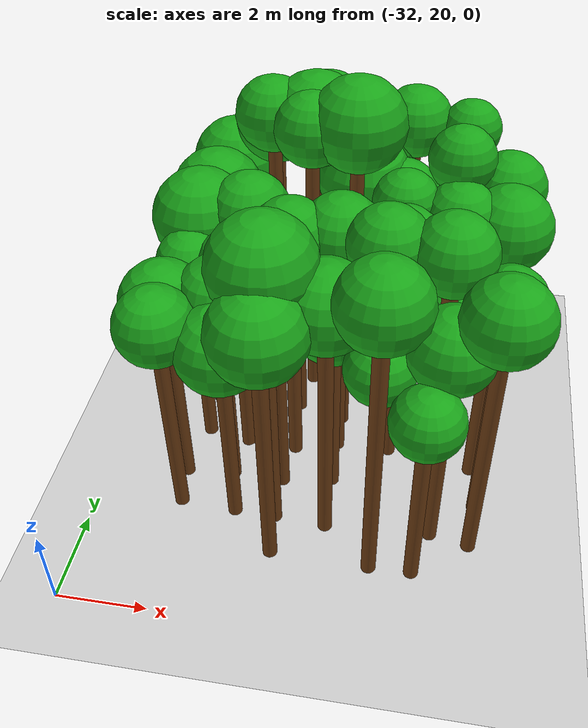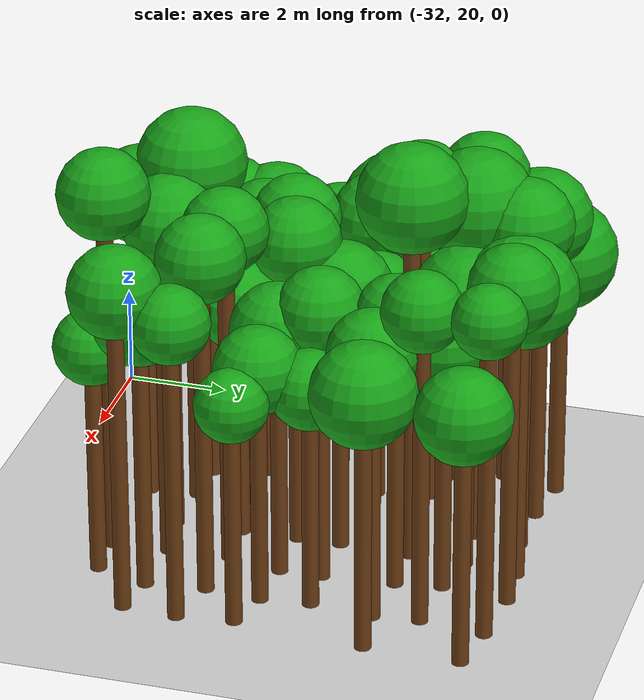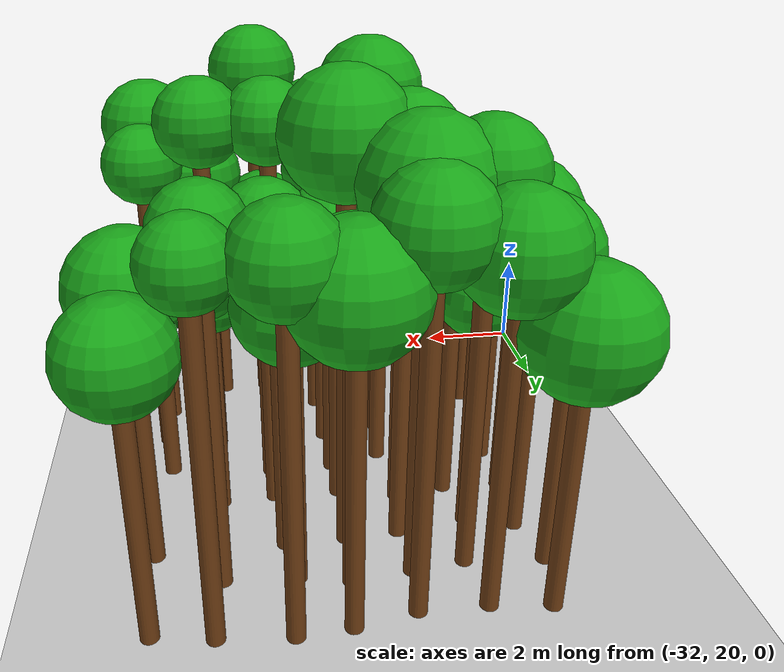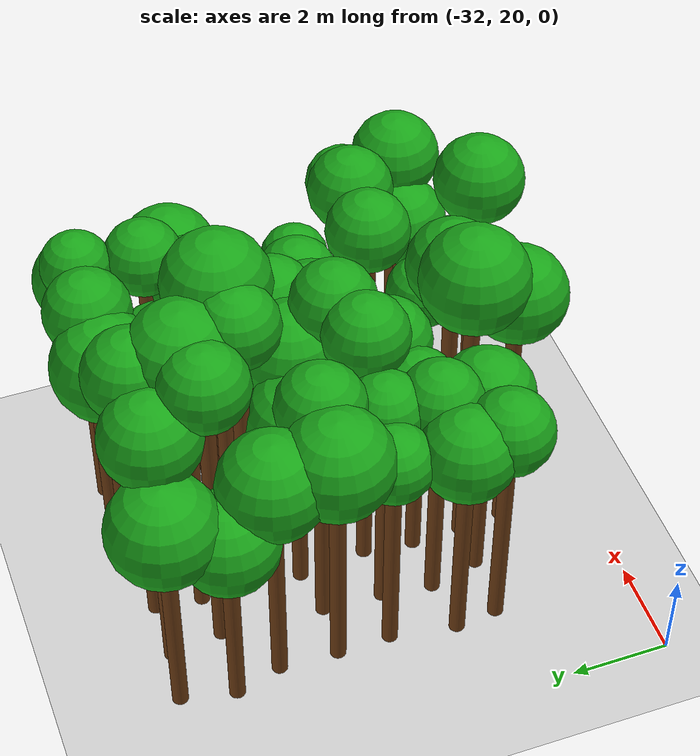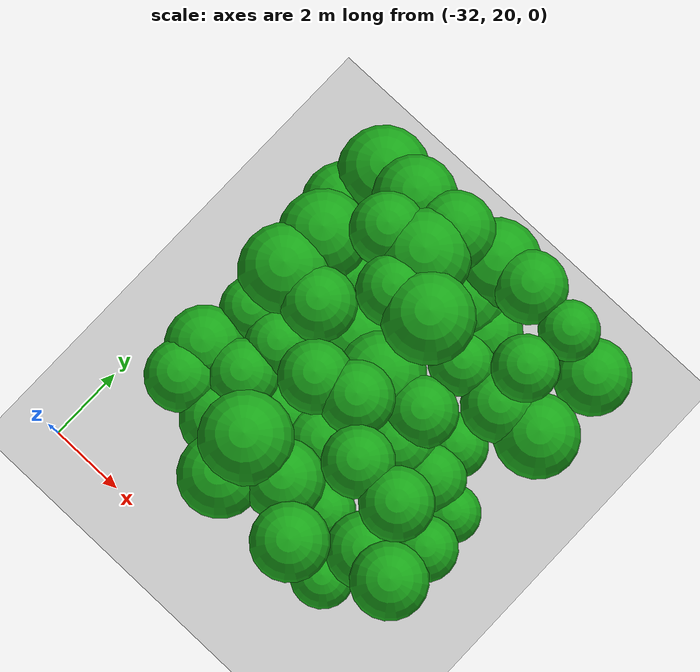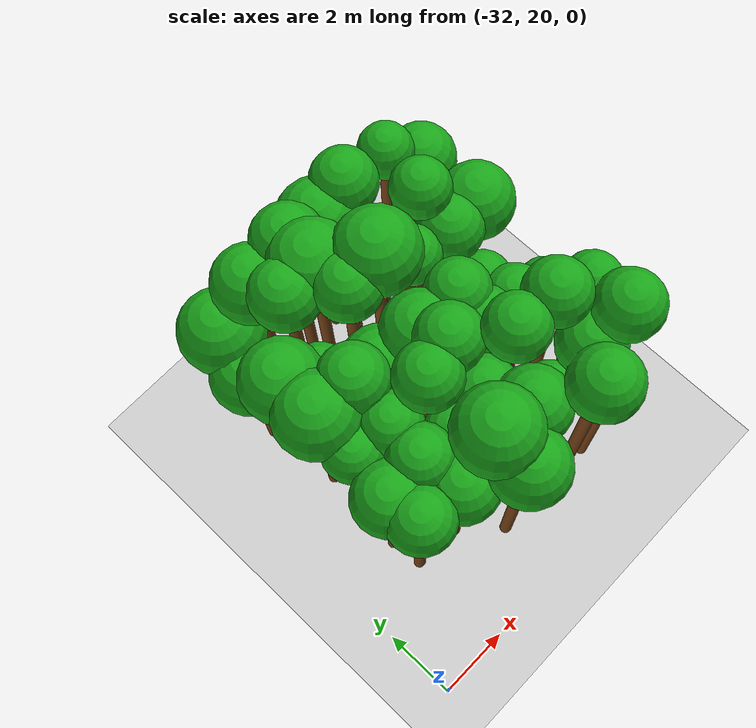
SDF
<sdf version="1.6">
 <world name="forest_world">
  <include><uri>model://sun</uri></include>
  <include><uri>model://ground_plane</uri></include>
  <model name="tree_48_trunk">
   <static>true</static>
   <pose>-30.04 22.86 2.45 0 0 0</pose>
   <link name="link">
    <collision name="collision">
     <geometry><cylinder><radius>0.16</radius><length>4.90</length></cylinder></geometry>
    </collision>
    <visual name="visual">
     <geometry><cylinder><radius>0.16</radius><length>4.90</length></cylinder></geometry>
     <material><ambient>0.35 0.20 0.05 1</ambient><diffuse>0.45 0.25 0.08 1</diffuse></material>
    </visual>
   </link>
  </model>
  <model name="tree_48_leaf">
   <static>true</static>
   <pose>-30.04 22.86 5.41 0 0 0</pose>
   <link name="link">
    <collision name="collision"><geometry><sphere><radius>0.85</radius></sphere></geometry></collision>
    <visual name="visual">
     <geometry><sphere><radius>0.85</radius></sphere></geometry>
     <material><ambient>0.05 0.45 0.05 1</ambient><diffuse>0.10 0.65 0.10 1</diffuse></material>
    </visual>
   </link>
  </model>
  <model name="tree_49_trunk">
   <static>true</static>
   <pose>-30.14 23.73 2.34 0 0 0</pose>
   <link name="link">
    <collision name="collision">
     <geometry><cylinder><radius>0.16</radius><length>4.68</length></cylinder></geometry>
    </collision>
    <visual name="visual">
     <geometry><cylinder><radius>0.16</radius><length>4.68</length></cylinder></geometry>
     <material><ambient>0.35 0.20 0.05 1</ambient><diffuse>0.45 0.25 0.08 1</diffuse></material>
    </visual>
   </link>
  </model>
  <model name="tree_49_leaf">
   <static>true</static>
   <pose>-30.14 23.73 5.25 0 0 0</pose>
   <link name="link">
    <collision name="collision"><geometry><sphere><radius>0.94</radius></sphere></geometry></collision>
    <visual name="visual">
     <geometry><sphere><radius>0.94</radius></sphere></geometry>
     <material><ambient>0.05 0.45 0.05 1</ambient><diffuse>0.10 0.65 0.10 1</diffuse></material>
    </visual>
   </link>
  </model>
  <model name="tree_50_trunk">
   <static>true</static>
   <pose>-29.92 25.08 2.40 0 0 0</pose>
   <link name="link">
    <collision name="collision">
     <geometry><cylinder><radius>0.16</radius><length>4.81</length></cylinder></geometry>
    </collision>
    <visual name="visual">
     <geometry><cylinder><radius>0.16</radius><length>4.81</length></cylinder></geometry>
     <material><ambient>0.35 0.20 0.05 1</ambient><diffuse>0.45 0.25 0.08 1</diffuse></material>
    </visual>
   </link>
  </model>
  <model name="tree_50_leaf">
   <static>true</static>
   <pose>-29.92 25.08 5.27 0 0 0</pose>
   <link name="link">
    <collision name="collision"><geometry><sphere><radius>0.78</radius></sphere></geometry></collision>
    <visual name="visual">
     <geometry><sphere><radius>0.78</radius></sphere></geometry>
     <material><ambient>0.05 0.45 0.05 1</ambient><diffuse>0.10 0.65 0.10 1</diffuse></material>
    </visual>
   </link>
  </model>
  <model name="tree_51_trunk">
   <static>true</static>
   <pose>-29.95 26.18 2.54 0 0 0</pose>
   <link name="link">
    <collision name="collision">
     <geometry><cylinder><radius>0.16</radius><length>5.07</length></cylinder></geometry>
    </collision>
    <visual name="visual">
     <geometry><cylinder><radius>0.16</radius><length>5.07</length></cylinder></geometry>
     <material><ambient>0.35 0.20 0.05 1</ambient><diffuse>0.45 0.25 0.08 1</diffuse></material>
    </visual>
   </link>
  </model>
  <model name="tree_51_leaf">
   <static>true</static>
   <pose>-29.95 26.18 5.72 0 0 0</pose>
   <link name="link">
    <collision name="collision"><geometry><sphere><radius>1.09</radius></sphere></geometry></collision>
    <visual name="visual">
     <geometry><sphere><radius>1.09</radius></sphere></geometry>
     <material><ambient>0.05 0.45 0.05 1</ambient><diffuse>0.10 0.65 0.10 1</diffuse></material>
    </visual>
   </link>
  </model>
  <model name="tree_52_trunk">
   <static>true</static>
   <pose>-29.90 27.38 2.45 0 0 0</pose>
   <link name="link">
    <collision name="collision">
     <geometry><cylinder><radius>0.16</radius><length>4.90</length></cylinder></geometry>
    </collision>
    <visual name="visual">
     <geometry><cylinder><radius>0.16</radius><length>4.90</length></cylinder></geometry>
     <material><ambient>0.35 0.20 0.05 1</ambient><diffuse>0.45 0.25 0.08 1</diffuse></material>
    </visual>
   </link>
  </model>
  <model name="tree_52_leaf">
   <static>true</static>
   <pose>-29.90 27.38 5.54 0 0 0</pose>
   <link name="link">
    <collision name="collision"><geometry><sphere><radius>1.06</radius></sphere></geometry></collision>
    <visual name="visual">
     <geometry><sphere><radius>1.06</radius></sphere></geometry>
     <material><ambient>0.05 0.45 0.05 1</ambient><diffuse>0.10 0.65 0.10 1</diffuse></material>
    </visual>
   </link>
  </model>
  <model name="tree_53_trunk">
   <static>true</static>
   <pose>-30.17 28.34 2.02 0 0 0</pose>
   <link name="link">
    <collision name="collision">
     <geometry><cylinder><radius>0.16</radius><length>4.05</length></cylinder></geometry>
    </collision>
    <visual name="visual">
     <geometry><cylinder><radius>0.16</radius><length>4.05</length></cylinder></geometry>
     <material><ambient>0.35 0.20 0.05 1</ambient><diffuse>0.45 0.25 0.08 1</diffuse></material>
    </visual>
   </link>
  </model>
  <model name="tree_53_leaf">
   <static>true</static>
   <pose>-30.17 28.34 4.65 0 0 0</pose>
   <link name="link">
    <collision name="collision"><geometry><sphere><radius>1.00</radius></sphere></geometry></collision>
    <visual name="visual">
     <geometry><sphere><radius>1.00</radius></sphere></geometry>
     <material><ambient>0.05 0.45 0.05 1</ambient><diffuse>0.10 0.65 0.10 1</diffuse></material>
    </visual>
   </link>
  </model>
  <model name="tree_54_trunk">
   <static>true</static>
   <pose>-29.94 29.43 2.27 0 0 0</pose>
   <link name="link">
    <collision name="collision">
     <geometry><cylinder><radius>0.16</radius><length>4.54</length></cylinder></geometry>
    </collision>
    <visual name="visual">
     <geometry><cylinder><radius>0.16</radius><length>4.54</length></cylinder></geometry>
     <material><ambient>0.35 0.20 0.05 1</ambient><diffuse>0.45 0.25 0.08 1</diffuse></material>
    </visual>
   </link>
  </model>
  <model name="tree_54_leaf">
   <static>true</static>
   <pose>-29.94 29.43 5.19 0 0 0</pose>
   <link name="link">
    <collision name="collision"><geometry><sphere><radius>1.09</radius></sphere></geometry></collision>
    <visual name="visual">
     <geometry><sphere><radius>1.09</radius></sphere></geometry>
     <material><ambient>0.05 0.45 0.05 1</ambient><diffuse>0.10 0.65 0.10 1</diffuse></material>
    </visual>
   </link>
  </model>
  <model name="tree_103_trunk">
   <static>true</static>
   <pose>-28.76 22.78 2.25 0 0 0</pose>
   <link name="link">
    <collision name="collision">
     <geometry><cylinder><radius>0.16</radius><length>4.50</length></cylinder></geometry>
    </collision>
    <visual name="visual">
     <geometry><cylinder><radius>0.16</radius><length>4.50</length></cylinder></geometry>
     <material><ambient>0.35 0.20 0.05 1</ambient><diffuse>0.45 0.25 0.08 1</diffuse></material>
    </visual>
   </link>
  </model>
  <model name="tree_103_leaf">
   <static>true</static>
   <pose>-28.76 22.78 5.07 0 0 0</pose>
   <link name="link">
    <collision name="collision"><geometry><sphere><radius>0.95</radius></sphere></geometry></collision>
    <visual name="visual">
     <geometry><sphere><radius>0.95</radius></sphere></geometry>
     <material><ambient>0.05 0.45 0.05 1</ambient><diffuse>0.10 0.65 0.10 1</diffuse></material>
    </visual>
   </link>
  </model>
  <model name="tree_104_trunk">
   <static>true</static>
   <pose>-29.03 23.83 2.53 0 0 0</pose>
   <link name="link">
    <collision name="collision">
     <geometry><cylinder><radius>0.16</radius><length>5.05</length></cylinder></geometry>
    </collision>
    <visual name="visual">
     <geometry><cylinder><radius>0.16</radius><length>5.05</length></cylinder></geometry>
     <material><ambient>0.35 0.20 0.05 1</ambient><diffuse>0.45 0.25 0.08 1</diffuse></material>
    </visual>
   </link>
  </model>
  <model name="tree_104_leaf">
   <static>true</static>
   <pose>-29.03 23.83 5.55 0 0 0</pose>
   <link name="link">
    <collision name="collision"><geometry><sphere><radius>0.83</radius></sphere></geometry></collision>
    <visual name="visual">
     <geometry><sphere><radius>0.83</radius></sphere></geometry>
     <material><ambient>0.05 0.45 0.05 1</ambient><diffuse>0.10 0.65 0.10 1</diffuse></material>
    </visual>
   </link>
  </model>
  <model name="tree_105_trunk">
   <static>true</static>
   <pose>-28.91 24.87 2.54 0 0 0</pose>
   <link name="link">
    <collision name="collision">
     <geometry><cylinder><radius>0.16</radius><length>5.07</length></cylinder></geometry>
    </collision>
    <visual name="visual">
     <geometry><cylinder><radius>0.16</radius><length>5.07</length></cylinder></geometry>
     <material><ambient>0.35 0.20 0.05 1</ambient><diffuse>0.45 0.25 0.08 1</diffuse></material>
    </visual>
   </link>
  </model>
  <model name="tree_105_leaf">
   <static>true</static>
   <pose>-28.91 24.87 5.55 0 0 0</pose>
   <link name="link">
    <collision name="collision"><geometry><sphere><radius>0.79</radius></sphere></geometry></collision>
    <visual name="visual">
     <geometry><sphere><radius>0.79</radius></sphere></geometry>
     <material><ambient>0.05 0.45 0.05 1</ambient><diffuse>0.10 0.65 0.10 1</diffuse></material>
    </visual>
   </link>
  </model>
  <model name="tree_106_trunk">
   <static>true</static>
   <pose>-28.84 26.10 2.75 0 0 0</pose>
   <link name="link">
    <collision name="collision">
     <geometry><cylinder><radius>0.16</radius><length>5.51</length></cylinder></geometry>
    </collision>
    <visual name="visual">
     <geometry><cylinder><radius>0.16</radius><length>5.51</length></cylinder></geometry>
     <material><ambient>0.35 0.20 0.05 1</ambient><diffuse>0.45 0.25 0.08 1</diffuse></material>
    </visual>
   </link>
  </model>
  <model name="tree_106_leaf">
   <static>true</static>
   <pose>-28.84 26.10 6.03 0 0 0</pose>
   <link name="link">
    <collision name="collision"><geometry><sphere><radius>0.88</radius></sphere></geometry></collision>
    <visual name="visual">
     <geometry><sphere><radius>0.88</radius></sphere></geometry>
     <material><ambient>0.05 0.45 0.05 1</ambient><diffuse>0.10 0.65 0.10 1</diffuse></material>
    </visual>
   </link>
  </model>
  <model name="tree_107_trunk">
   <static>true</static>
   <pose>-29.02 27.11 2.15 0 0 0</pose>
   <link name="link">
    <collision name="collision">
     <geometry><cylinder><radius>0.16</radius><length>4.31</length></cylinder></geometry>
    </collision>
    <visual name="visual">
     <geometry><cylinder><radius>0.16</radius><length>4.31</length></cylinder></geometry>
     <material><ambient>0.35 0.20 0.05 1</ambient><diffuse>0.45 0.25 0.08 1</diffuse></material>
    </visual>
   </link>
  </model>
  <model name="tree_107_leaf">
   <static>true</static>
   <pose>-29.02 27.11 4.77 0 0 0</pose>
   <link name="link">
    <collision name="collision"><geometry><sphere><radius>0.78</radius></sphere></geometry></collision>
    <visual name="visual">
     <geometry><sphere><radius>0.78</radius></sphere></geometry>
     <material><ambient>0.05 0.45 0.05 1</ambient><diffuse>0.10 0.65 0.10 1</diffuse></material>
    </visual>
   </link>
  </model>
  <model name="tree_108_trunk">
   <static>true</static>
   <pose>-28.73 28.21 3.36 0 0 0</pose>
   <link name="link">
    <collision name="collision">
     <geometry><cylinder><radius>0.16</radius><length>6.71</length></cylinder></geometry>
    </collision>
    <visual name="visual">
     <geometry><cylinder><radius>0.16</radius><length>6.71</length></cylinder></geometry>
     <material><ambient>0.35 0.20 0.05 1</ambient><diffuse>0.45 0.25 0.08 1</diffuse></material>
    </visual>
   </link>
  </model>
  <model name="tree_108_leaf">
   <static>true</static>
   <pose>-28.73 28.21 7.22 0 0 0</pose>
   <link name="link">
    <collision name="collision"><geometry><sphere><radius>0.86</radius></sphere></geometry></collision>
    <visual name="visual">
     <geometry><sphere><radius>0.86</radius></sphere></geometry>
     <material><ambient>0.05 0.45 0.05 1</ambient><diffuse>0.10 0.65 0.10 1</diffuse></material>
    </visual>
   </link>
  </model>
  <model name="tree_109_trunk">
   <static>true</static>
   <pose>-28.88 29.28 2.92 0 0 0</pose>
   <link name="link">
    <collision name="collision">
     <geometry><cylinder><radius>0.16</radius><length>5.85</length></cylinder></geometry>
    </collision>
    <visual name="visual">
     <geometry><cylinder><radius>0.16</radius><length>5.85</length></cylinder></geometry>
     <material><ambient>0.35 0.20 0.05 1</ambient><diffuse>0.45 0.25 0.08 1</diffuse></material>
    </visual>
   </link>
  </model>
  <model name="tree_109_leaf">
   <static>true</static>
   <pose>-28.88 29.28 6.43 0 0 0</pose>
   <link name="link">
    <collision name="collision"><geometry><sphere><radius>0.97</radius></sphere></geometry></collision>
    <visual name="visual">
     <geometry><sphere><radius>0.97</radius></sphere></geometry>
     <material><ambient>0.05 0.45 0.05 1</ambient><diffuse>0.10 0.65 0.10 1</diffuse></material>
    </visual>
   </link>
  </model>
  <model name="tree_157_trunk">
   <static>true</static>
   <pose>-27.75 21.81 2.94 0 0 0</pose>
   <link name="link">
    <collision name="collision">
     <geometry><cylinder><radius>0.16</radius><length>5.88</length></cylinder></geometry>
    </collision>
    <visual name="visual">
     <geometry><cylinder><radius>0.16</radius><length>5.88</length></cylinder></geometry>
     <material><ambient>0.35 0.20 0.05 1</ambient><diffuse>0.45 0.25 0.08 1</diffuse></material>
    </visual>
   </link>
  </model>
  <model name="tree_157_leaf">
   <static>true</static>
   <pose>-27.75 21.81 6.46 0 0 0</pose>
   <link name="link">
    <collision name="collision"><geometry><sphere><radius>0.97</radius></sphere></geometry></collision>
    <visual name="visual">
     <geometry><sphere><radius>0.97</radius></sphere></geometry>
     <material><ambient>0.05 0.45 0.05 1</ambient><diffuse>0.10 0.65 0.10 1</diffuse></material>
    </visual>
   </link>
  </model>
  <model name="tree_158_trunk">
   <static>true</static>
   <pose>-27.83 22.75 3.29 0 0 0</pose>
   <link name="link">
    <collision name="collision">
     <geometry><cylinder><radius>0.16</radius><length>6.58</length></cylinder></geometry>
    </collision>
    <visual name="visual">
     <geometry><cylinder><radius>0.16</radius><length>6.58</length></cylinder></geometry>
     <material><ambient>0.35 0.20 0.05 1</ambient><diffuse>0.45 0.25 0.08 1</diffuse></material>
    </visual>
   </link>
  </model>
  <model name="tree_158_leaf">
   <static>true</static>
   <pose>-27.83 22.75 7.22 0 0 0</pose>
   <link name="link">
    <collision name="collision"><geometry><sphere><radius>1.06</radius></sphere></geometry></collision>
    <visual name="visual">
     <geometry><sphere><radius>1.06</radius></sphere></geometry>
     <material><ambient>0.05 0.45 0.05 1</ambient><diffuse>0.10 0.65 0.10 1</diffuse></material>
    </visual>
   </link>
  </model>
  <model name="tree_159_trunk">
   <static>true</static>
   <pose>-27.85 23.80 2.13 0 0 0</pose>
   <link name="link">
    <collision name="collision">
     <geometry><cylinder><radius>0.16</radius><length>4.26</length></cylinder></geometry>
    </collision>
    <visual name="visual">
     <geometry><cylinder><radius>0.16</radius><length>4.26</length></cylinder></geometry>
     <material><ambient>0.35 0.20 0.05 1</ambient><diffuse>0.45 0.25 0.08 1</diffuse></material>
    </visual>
   </link>
  </model>
  <model name="tree_159_leaf">
   <static>true</static>
   <pose>-27.85 23.80 4.73 0 0 0</pose>
   <link name="link">
    <collision name="collision"><geometry><sphere><radius>0.79</radius></sphere></geometry></collision>
    <visual name="visual">
     <geometry><sphere><radius>0.79</radius></sphere></geometry>
     <material><ambient>0.05 0.45 0.05 1</ambient><diffuse>0.10 0.65 0.10 1</diffuse></material>
    </visual>
   </link>
  </model>
  <model name="tree_160_trunk">
   <static>true</static>
   <pose>-27.73 24.83 2.93 0 0 0</pose>
   <link name="link">
    <collision name="collision">
     <geometry><cylinder><radius>0.16</radius><length>5.87</length></cylinder></geometry>
    </collision>
    <visual name="visual">
     <geometry><cylinder><radius>0.16</radius><length>5.87</length></cylinder></geometry>
     <material><ambient>0.35 0.20 0.05 1</ambient><diffuse>0.45 0.25 0.08 1</diffuse></material>
    </visual>
   </link>
  </model>
  <model name="tree_160_leaf">
   <static>true</static>
   <pose>-27.73 24.83 6.38 0 0 0</pose>
   <link name="link">
    <collision name="collision"><geometry><sphere><radius>0.85</radius></sphere></geometry></collision>
    <visual name="visual">
     <geometry><sphere><radius>0.85</radius></sphere></geometry>
     <material><ambient>0.05 0.45 0.05 1</ambient><diffuse>0.10 0.65 0.10 1</diffuse></material>
    </visual>
   </link>
  </model>
  <model name="tree_161_trunk">
   <static>true</static>
   <pose>-27.87 26.25 2.09 0 0 0</pose>
   <link name="link">
    <collision name="collision">
     <geometry><cylinder><radius>0.16</radius><length>4.17</length></cylinder></geometry>
    </collision>
    <visual name="visual">
     <geometry><cylinder><radius>0.16</radius><length>4.17</length></cylinder></geometry>
     <material><ambient>0.35 0.20 0.05 1</ambient><diffuse>0.45 0.25 0.08 1</diffuse></material>
    </visual>
   </link>
  </model>
  <model name="tree_161_leaf">
   <static>true</static>
   <pose>-27.87 26.25 4.77 0 0 0</pose>
   <link name="link">
    <collision name="collision"><geometry><sphere><radius>1.00</radius></sphere></geometry></collision>
    <visual name="visual">
     <geometry><sphere><radius>1.00</radius></sphere></geometry>
     <material><ambient>0.05 0.45 0.05 1</ambient><diffuse>0.10 0.65 0.10 1</diffuse></material>
    </visual>
   </link>
  </model>
  <model name="tree_162_trunk">
   <static>true</static>
   <pose>-27.70 27.28 3.47 0 0 0</pose>
   <link name="link">
    <collision name="collision">
     <geometry><cylinder><radius>0.16</radius><length>6.94</length></cylinder></geometry>
    </collision>
    <visual name="visual">
     <geometry><cylinder><radius>0.16</radius><length>6.94</length></cylinder></geometry>
     <material><ambient>0.35 0.20 0.05 1</ambient><diffuse>0.45 0.25 0.08 1</diffuse></material>
    </visual>
   </link>
  </model>
  <model name="tree_162_leaf">
   <static>true</static>
   <pose>-27.70 27.28 7.43 0 0 0</pose>
   <link name="link">
    <collision name="collision"><geometry><sphere><radius>0.83</radius></sphere></geometry></collision>
    <visual name="visual">
     <geometry><sphere><radius>0.83</radius></sphere></geometry>
     <material><ambient>0.05 0.45 0.05 1</ambient><diffuse>0.10 0.65 0.10 1</diffuse></material>
    </visual>
   </link>
  </model>
  <model name="tree_163_trunk">
   <static>true</static>
   <pose>-27.77 28.32 3.24 0 0 0</pose>
   <link name="link">
    <collision name="collision">
     <geometry><cylinder><radius>0.16</radius><length>6.48</length></cylinder></geometry>
    </collision>
    <visual name="visual">
     <geometry><cylinder><radius>0.16</radius><length>6.48</length></cylinder></geometry>
     <material><ambient>0.35 0.20 0.05 1</ambient><diffuse>0.45 0.25 0.08 1</diffuse></material>
    </visual>
   </link>
  </model>
  <model name="tree_163_leaf">
   <static>true</static>
   <pose>-27.77 28.32 7.12 0 0 0</pose>
   <link name="link">
    <collision name="collision"><geometry><sphere><radius>1.08</radius></sphere></geometry></collision>
    <visual name="visual">
     <geometry><sphere><radius>1.08</radius></sphere></geometry>
     <material><ambient>0.05 0.45 0.05 1</ambient><diffuse>0.10 0.65 0.10 1</diffuse></material>
    </visual>
   </link>
  </model>
  <model name="tree_164_trunk">
   <static>true</static>
   <pose>-27.67 29.26 3.15 0 0 0</pose>
   <link name="link">
    <collision name="collision">
     <geometry><cylinder><radius>0.16</radius><length>6.30</length></cylinder></geometry>
    </collision>
    <visual name="visual">
     <geometry><cylinder><radius>0.16</radius><length>6.30</length></cylinder></geometry>
     <material><ambient>0.35 0.20 0.05 1</ambient><diffuse>0.45 0.25 0.08 1</diffuse></material>
    </visual>
   </link>
  </model>
  <model name="tree_164_leaf">
   <static>true</static>
   <pose>-27.67 29.26 6.85 0 0 0</pose>
   <link name="link">
    <collision name="collision"><geometry><sphere><radius>0.92</radius></sphere></geometry></collision>
    <visual name="visual">
     <geometry><sphere><radius>0.92</radius></sphere></geometry>
     <material><ambient>0.05 0.45 0.05 1</ambient><diffuse>0.10 0.65 0.10 1</diffuse></material>
    </visual>
   </link>
  </model>
  <model name="tree_213_trunk">
   <static>true</static>
   <pose>-26.67 22.68 2.98 0 0 0</pose>
   <link name="link">
    <collision name="collision">
     <geometry><cylinder><radius>0.16</radius><length>5.96</length></cylinder></geometry>
    </collision>
    <visual name="visual">
     <geometry><cylinder><radius>0.16</radius><length>5.96</length></cylinder></geometry>
     <material><ambient>0.35 0.20 0.05 1</ambient><diffuse>0.45 0.25 0.08 1</diffuse></material>
    </visual>
   </link>
  </model>
  <model name="tree_213_leaf">
   <static>true</static>
   <pose>-26.67 22.68 6.52 0 0 0</pose>
   <link name="link">
    <collision name="collision"><geometry><sphere><radius>0.93</radius></sphere></geometry></collision>
    <visual name="visual">
     <geometry><sphere><radius>0.93</radius></sphere></geometry>
     <material><ambient>0.05 0.45 0.05 1</ambient><diffuse>0.10 0.65 0.10 1</diffuse></material>
    </visual>
   </link>
  </model>
  <model name="tree_214_trunk">
   <static>true</static>
   <pose>-26.71 24.00 2.22 0 0 0</pose>
   <link name="link">
    <collision name="collision">
     <geometry><cylinder><radius>0.16</radius><length>4.44</length></cylinder></geometry>
    </collision>
    <visual name="visual">
     <geometry><cylinder><radius>0.16</radius><length>4.44</length></cylinder></geometry>
     <material><ambient>0.35 0.20 0.05 1</ambient><diffuse>0.45 0.25 0.08 1</diffuse></material>
    </visual>
   </link>
  </model>
  <model name="tree_214_leaf">
   <static>true</static>
   <pose>-26.71 24.00 4.97 0 0 0</pose>
   <link name="link">
    <collision name="collision"><geometry><sphere><radius>0.89</radius></sphere></geometry></collision>
    <visual name="visual">
     <geometry><sphere><radius>0.89</radius></sphere></geometry>
     <material><ambient>0.05 0.45 0.05 1</ambient><diffuse>0.10 0.65 0.10 1</diffuse></material>
    </visual>
   </link>
  </model>
  <model name="tree_215_trunk">
   <static>true</static>
   <pose>-26.74 25.11 2.94 0 0 0</pose>
   <link name="link">
    <collision name="collision">
     <geometry><cylinder><radius>0.16</radius><length>5.88</length></cylinder></geometry>
    </collision>
    <visual name="visual">
     <geometry><cylinder><radius>0.16</radius><length>5.88</length></cylinder></geometry>
     <material><ambient>0.35 0.20 0.05 1</ambient><diffuse>0.45 0.25 0.08 1</diffuse></material>
    </visual>
   </link>
  </model>
  <model name="tree_215_leaf">
   <static>true</static>
   <pose>-26.74 25.11 6.40 0 0 0</pose>
   <link name="link">
    <collision name="collision"><geometry><sphere><radius>0.86</radius></sphere></geometry></collision>
    <visual name="visual">
     <geometry><sphere><radius>0.86</radius></sphere></geometry>
     <material><ambient>0.05 0.45 0.05 1</ambient><diffuse>0.10 0.65 0.10 1</diffuse></material>
    </visual>
   </link>
  </model>
  <model name="tree_216_trunk">
   <static>true</static>
   <pose>-26.76 25.96 2.40 0 0 0</pose>
   <link name="link">
    <collision name="collision">
     <geometry><cylinder><radius>0.16</radius><length>4.80</length></cylinder></geometry>
    </collision>
    <visual name="visual">
     <geometry><cylinder><radius>0.16</radius><length>4.80</length></cylinder></geometry>
     <material><ambient>0.35 0.20 0.05 1</ambient><diffuse>0.45 0.25 0.08 1</diffuse></material>
    </visual>
   </link>
  </model>
  <model name="tree_216_leaf">
   <static>true</static>
   <pose>-26.76 25.96 5.42 0 0 0</pose>
   <link name="link">
    <collision name="collision"><geometry><sphere><radius>1.03</radius></sphere></geometry></collision>
    <visual name="visual">
     <geometry><sphere><radius>1.03</radius></sphere></geometry>
     <material><ambient>0.05 0.45 0.05 1</ambient><diffuse>0.10 0.65 0.10 1</diffuse></material>
    </visual>
   </link>
  </model>
  <model name="tree_217_trunk">
   <static>true</static>
   <pose>-26.72 27.34 3.49 0 0 0</pose>
   <link name="link">
    <collision name="collision">
     <geometry><cylinder><radius>0.16</radius><length>6.97</length></cylinder></geometry>
    </collision>
    <visual name="visual">
     <geometry><cylinder><radius>0.16</radius><length>6.97</length></cylinder></geometry>
     <material><ambient>0.35 0.20 0.05 1</ambient><diffuse>0.45 0.25 0.08 1</diffuse></material>
    </visual>
   </link>
  </model>
  <model name="tree_217_leaf">
   <static>true</static>
   <pose>-26.72 27.34 7.61 0 0 0</pose>
   <link name="link">
    <collision name="collision"><geometry><sphere><radius>1.05</radius></sphere></geometry></collision>
    <visual name="visual">
     <geometry><sphere><radius>1.05</radius></sphere></geometry>
     <material><ambient>0.05 0.45 0.05 1</ambient><diffuse>0.10 0.65 0.10 1</diffuse></material>
    </visual>
   </link>
  </model>
  <model name="tree_218_trunk">
   <static>true</static>
   <pose>-26.68 28.43 2.50 0 0 0</pose>
   <link name="link">
    <collision name="collision">
     <geometry><cylinder><radius>0.16</radius><length>5.00</length></cylinder></geometry>
    </collision>
    <visual name="visual">
     <geometry><cylinder><radius>0.16</radius><length>5.00</length></cylinder></geometry>
     <material><ambient>0.35 0.20 0.05 1</ambient><diffuse>0.45 0.25 0.08 1</diffuse></material>
    </visual>
   </link>
  </model>
  <model name="tree_218_leaf">
   <static>true</static>
   <pose>-26.68 28.43 5.66 0 0 0</pose>
   <link name="link">
    <collision name="collision"><geometry><sphere><radius>1.09</radius></sphere></geometry></collision>
    <visual name="visual">
     <geometry><sphere><radius>1.09</radius></sphere></geometry>
     <material><ambient>0.05 0.45 0.05 1</ambient><diffuse>0.10 0.65 0.10 1</diffuse></material>
    </visual>
   </link>
  </model>
  <model name="tree_219_trunk">
   <static>true</static>
   <pose>-26.57 29.47 2.71 0 0 0</pose>
   <link name="link">
    <collision name="collision">
     <geometry><cylinder><radius>0.16</radius><length>5.41</length></cylinder></geometry>
    </collision>
    <visual name="visual">
     <geometry><cylinder><radius>0.16</radius><length>5.41</length></cylinder></geometry>
     <material><ambient>0.35 0.20 0.05 1</ambient><diffuse>0.45 0.25 0.08 1</diffuse></material>
    </visual>
   </link>
  </model>
  <model name="tree_219_leaf">
   <static>true</static>
   <pose>-26.57 29.47 6.05 0 0 0</pose>
   <link name="link">
    <collision name="collision"><geometry><sphere><radius>1.07</radius></sphere></geometry></collision>
    <visual name="visual">
     <geometry><sphere><radius>1.07</radius></sphere></geometry>
     <material><ambient>0.05 0.45 0.05 1</ambient><diffuse>0.10 0.65 0.10 1</diffuse></material>
    </visual>
   </link>
  </model>
  <model name="tree_267_trunk">
   <static>true</static>
   <pose>-25.57 21.76 3.48 0 0 0</pose>
   <link name="link">
    <collision name="collision">
     <geometry><cylinder><radius>0.16</radius><length>6.95</length></cylinder></geometry>
    </collision>
    <visual name="visual">
     <geometry><cylinder><radius>0.16</radius><length>6.95</length></cylinder></geometry>
     <material><ambient>0.35 0.20 0.05 1</ambient><diffuse>0.45 0.25 0.08 1</diffuse></material>
    </visual>
   </link>
  </model>
  <model name="tree_267_leaf">
   <static>true</static>
   <pose>-25.57 21.76 7.48 0 0 0</pose>
   <link name="link">
    <collision name="collision"><geometry><sphere><radius>0.88</radius></sphere></geometry></collision>
    <visual name="visual">
     <geometry><sphere><radius>0.88</radius></sphere></geometry>
     <material><ambient>0.05 0.45 0.05 1</ambient><diffuse>0.10 0.65 0.10 1</diffuse></material>
    </visual>
   </link>
  </model>
  <model name="tree_268_trunk">
   <static>true</static>
   <pose>-25.64 22.86 2.24 0 0 0</pose>
   <link name="link">
    <collision name="collision">
     <geometry><cylinder><radius>0.16</radius><length>4.49</length></cylinder></geometry>
    </collision>
    <visual name="visual">
     <geometry><cylinder><radius>0.16</radius><length>4.49</length></cylinder></geometry>
     <material><ambient>0.35 0.20 0.05 1</ambient><diffuse>0.45 0.25 0.08 1</diffuse></material>
    </visual>
   </link>
  </model>
  <model name="tree_268_leaf">
   <static>true</static>
   <pose>-25.64 22.86 4.93 0 0 0</pose>
   <link name="link">
    <collision name="collision"><geometry><sphere><radius>0.74</radius></sphere></geometry></collision>
    <visual name="visual">
     <geometry><sphere><radius>0.74</radius></sphere></geometry>
     <material><ambient>0.05 0.45 0.05 1</ambient><diffuse>0.10 0.65 0.10 1</diffuse></material>
    </visual>
   </link>
  </model>
  <model name="tree_269_trunk">
   <static>true</static>
   <pose>-25.71 24.06 3.25 0 0 0</pose>
   <link name="link">
    <collision name="collision">
     <geometry><cylinder><radius>0.16</radius><length>6.50</length></cylinder></geometry>
    </collision>
    <visual name="visual">
     <geometry><cylinder><radius>0.16</radius><length>6.50</length></cylinder></geometry>
     <material><ambient>0.35 0.20 0.05 1</ambient><diffuse>0.45 0.25 0.08 1</diffuse></material>
    </visual>
   </link>
  </model>
  <model name="tree_269_leaf">
   <static>true</static>
   <pose>-25.71 24.06 6.99 0 0 0</pose>
   <link name="link">
    <collision name="collision"><geometry><sphere><radius>0.82</radius></sphere></geometry></collision>
    <visual name="visual">
     <geometry><sphere><radius>0.82</radius></sphere></geometry>
     <material><ambient>0.05 0.45 0.05 1</ambient><diffuse>0.10 0.65 0.10 1</diffuse></material>
    </visual>
   </link>
  </model>
  <model name="tree_270_trunk">
   <static>true</static>
   <pose>-25.50 25.12 2.32 0 0 0</pose>
   <link name="link">
    <collision name="collision">
     <geometry><cylinder><radius>0.16</radius><length>4.64</length></cylinder></geometry>
    </collision>
    <visual name="visual">
     <geometry><cylinder><radius>0.16</radius><length>4.64</length></cylinder></geometry>
     <material><ambient>0.35 0.20 0.05 1</ambient><diffuse>0.45 0.25 0.08 1</diffuse></material>
    </visual>
   </link>
  </model>
  <model name="tree_270_leaf">
   <static>true</static>
   <pose>-25.50 25.12 5.18 0 0 0</pose>
   <link name="link">
    <collision name="collision"><geometry><sphere><radius>0.91</radius></sphere></geometry></collision>
    <visual name="visual">
     <geometry><sphere><radius>0.91</radius></sphere></geometry>
     <material><ambient>0.05 0.45 0.05 1</ambient><diffuse>0.10 0.65 0.10 1</diffuse></material>
    </visual>
   </link>
  </model>
  <model name="tree_271_trunk">
   <static>true</static>
   <pose>-25.52 25.94 2.59 0 0 0</pose>
   <link name="link">
    <collision name="collision">
     <geometry><cylinder><radius>0.16</radius><length>5.19</length></cylinder></geometry>
    </collision>
    <visual name="visual">
     <geometry><cylinder><radius>0.16</radius><length>5.19</length></cylinder></geometry>
     <material><ambient>0.35 0.20 0.05 1</ambient><diffuse>0.45 0.25 0.08 1</diffuse></material>
    </visual>
   </link>
  </model>
  <model name="tree_271_leaf">
   <static>true</static>
   <pose>-25.52 25.94 5.69 0 0 0</pose>
   <link name="link">
    <collision name="collision"><geometry><sphere><radius>0.84</radius></sphere></geometry></collision>
    <visual name="visual">
     <geometry><sphere><radius>0.84</radius></sphere></geometry>
     <material><ambient>0.05 0.45 0.05 1</ambient><diffuse>0.10 0.65 0.10 1</diffuse></material>
    </visual>
   </link>
  </model>
  <model name="tree_272_trunk">
   <static>true</static>
   <pose>-25.62 27.35 2.66 0 0 0</pose>
   <link name="link">
    <collision name="collision">
     <geometry><cylinder><radius>0.16</radius><length>5.31</length></cylinder></geometry>
    </collision>
    <visual name="visual">
     <geometry><cylinder><radius>0.16</radius><length>5.31</length></cylinder></geometry>
     <material><ambient>0.35 0.20 0.05 1</ambient><diffuse>0.45 0.25 0.08 1</diffuse></material>
    </visual>
   </link>
  </model>
  <model name="tree_272_leaf">
   <static>true</static>
   <pose>-25.62 27.35 5.77 0 0 0</pose>
   <link name="link">
    <collision name="collision"><geometry><sphere><radius>0.76</radius></sphere></geometry></collision>
    <visual name="visual">
     <geometry><sphere><radius>0.76</radius></sphere></geometry>
     <material><ambient>0.05 0.45 0.05 1</ambient><diffuse>0.10 0.65 0.10 1</diffuse></material>
    </visual>
   </link>
  </model>
  <model name="tree_273_trunk">
   <static>true</static>
   <pose>-25.77 28.23 2.36 0 0 0</pose>
   <link name="link">
    <collision name="collision">
     <geometry><cylinder><radius>0.16</radius><length>4.73</length></cylinder></geometry>
    </collision>
    <visual name="visual">
     <geometry><cylinder><radius>0.16</radius><length>4.73</length></cylinder></geometry>
     <material><ambient>0.35 0.20 0.05 1</ambient><diffuse>0.45 0.25 0.08 1</diffuse></material>
    </visual>
   </link>
  </model>
  <model name="tree_273_leaf">
   <static>true</static>
   <pose>-25.77 28.23 5.29 0 0 0</pose>
   <link name="link">
    <collision name="collision"><geometry><sphere><radius>0.94</radius></sphere></geometry></collision>
    <visual name="visual">
     <geometry><sphere><radius>0.94</radius></sphere></geometry>
     <material><ambient>0.05 0.45 0.05 1</ambient><diffuse>0.10 0.65 0.10 1</diffuse></material>
    </visual>
   </link>
  </model>
  <model name="tree_274_trunk">
   <static>true</static>
   <pose>-25.62 29.53 3.04 0 0 0</pose>
   <link name="link">
    <collision name="collision">
     <geometry><cylinder><radius>0.16</radius><length>6.08</length></cylinder></geometry>
    </collision>
    <visual name="visual">
     <geometry><cylinder><radius>0.16</radius><length>6.08</length></cylinder></geometry>
     <material><ambient>0.35 0.20 0.05 1</ambient><diffuse>0.45 0.25 0.08 1</diffuse></material>
    </visual>
   </link>
  </model>
  <model name="tree_274_leaf">
   <static>true</static>
   <pose>-25.62 29.53 6.59 0 0 0</pose>
   <link name="link">
    <collision name="collision"><geometry><sphere><radius>0.85</radius></sphere></geometry></collision>
    <visual name="visual">
     <geometry><sphere><radius>0.85</radius></sphere></geometry>
     <material><ambient>0.05 0.45 0.05 1</ambient><diffuse>0.10 0.65 0.10 1</diffuse></material>
    </visual>
   </link>
  </model>
  <model name="tree_322_trunk">
   <static>true</static>
   <pose>-24.65 21.78 2.17 0 0 0</pose>
   <link name="link">
    <collision name="collision">
     <geometry><cylinder><radius>0.16</radius><length>4.33</length></cylinder></geometry>
    </collision>
    <visual name="visual">
     <geometry><cylinder><radius>0.16</radius><length>4.33</length></cylinder></geometry>
     <material><ambient>0.35 0.20 0.05 1</ambient><diffuse>0.45 0.25 0.08 1</diffuse></material>
    </visual>
   </link>
  </model>
  <model name="tree_322_leaf">
   <static>true</static>
   <pose>-24.65 21.78 4.78 0 0 0</pose>
   <link name="link">
    <collision name="collision"><geometry><sphere><radius>0.74</radius></sphere></geometry></collision>
    <visual name="visual">
     <geometry><sphere><radius>0.74</radius></sphere></geometry>
     <material><ambient>0.05 0.45 0.05 1</ambient><diffuse>0.10 0.65 0.10 1</diffuse></material>
    </visual>
   </link>
  </model>
  <model name="tree_323_trunk">
   <static>true</static>
   <pose>-24.33 22.82 2.57 0 0 0</pose>
   <link name="link">
    <collision name="collision">
     <geometry><cylinder><radius>0.16</radius><length>5.13</length></cylinder></geometry>
    </collision>
    <visual name="visual">
     <geometry><cylinder><radius>0.16</radius><length>5.13</length></cylinder></geometry>
     <material><ambient>0.35 0.20 0.05 1</ambient><diffuse>0.45 0.25 0.08 1</diffuse></material>
    </visual>
   </link>
  </model>
  <model name="tree_323_leaf">
   <static>true</static>
   <pose>-24.33 22.82 5.67 0 0 0</pose>
   <link name="link">
    <collision name="collision"><geometry><sphere><radius>0.89</radius></sphere></geometry></collision>
    <visual name="visual">
     <geometry><sphere><radius>0.89</radius></sphere></geometry>
     <material><ambient>0.05 0.45 0.05 1</ambient><diffuse>0.10 0.65 0.10 1</diffuse></material>
    </visual>
   </link>
  </model>
  <model name="tree_324_trunk">
   <static>true</static>
   <pose>-24.48 23.97 3.24 0 0 0</pose>
   <link name="link">
    <collision name="collision">
     <geometry><cylinder><radius>0.16</radius><length>6.48</length></cylinder></geometry>
    </collision>
    <visual name="visual">
     <geometry><cylinder><radius>0.16</radius><length>6.48</length></cylinder></geometry>
     <material><ambient>0.35 0.20 0.05 1</ambient><diffuse>0.45 0.25 0.08 1</diffuse></material>
    </visual>
   </link>
  </model>
  <model name="tree_324_leaf">
   <static>true</static>
   <pose>-24.48 23.97 6.99 0 0 0</pose>
   <link name="link">
    <collision name="collision"><geometry><sphere><radius>0.84</radius></sphere></geometry></collision>
    <visual name="visual">
     <geometry><sphere><radius>0.84</radius></sphere></geometry>
     <material><ambient>0.05 0.45 0.05 1</ambient><diffuse>0.10 0.65 0.10 1</diffuse></material>
    </visual>
   </link>
  </model>
  <model name="tree_325_trunk">
   <static>true</static>
   <pose>-24.40 25.06 2.20 0 0 0</pose>
   <link name="link">
    <collision name="collision">
     <geometry><cylinder><radius>0.16</radius><length>4.40</length></cylinder></geometry>
    </collision>
    <visual name="visual">
     <geometry><cylinder><radius>0.16</radius><length>4.40</length></cylinder></geometry>
     <material><ambient>0.35 0.20 0.05 1</ambient><diffuse>0.45 0.25 0.08 1</diffuse></material>
    </visual>
   </link>
  </model>
  <model name="tree_325_leaf">
   <static>true</static>
   <pose>-24.40 25.06 4.91 0 0 0</pose>
   <link name="link">
    <collision name="collision"><geometry><sphere><radius>0.84</radius></sphere></geometry></collision>
    <visual name="visual">
     <geometry><sphere><radius>0.84</radius></sphere></geometry>
     <material><ambient>0.05 0.45 0.05 1</ambient><diffuse>0.10 0.65 0.10 1</diffuse></material>
    </visual>
   </link>
  </model>
  <model name="tree_326_trunk">
   <static>true</static>
   <pose>-24.50 26.02 2.06 0 0 0</pose>
   <link name="link">
    <collision name="collision">
     <geometry><cylinder><radius>0.16</radius><length>4.12</length></cylinder></geometry>
    </collision>
    <visual name="visual">
     <geometry><cylinder><radius>0.16</radius><length>4.12</length></cylinder></geometry>
     <material><ambient>0.35 0.20 0.05 1</ambient><diffuse>0.45 0.25 0.08 1</diffuse></material>
    </visual>
   </link>
  </model>
  <model name="tree_326_leaf">
   <static>true</static>
   <pose>-24.50 26.02 4.59 0 0 0</pose>
   <link name="link">
    <collision name="collision"><geometry><sphere><radius>0.77</radius></sphere></geometry></collision>
    <visual name="visual">
     <geometry><sphere><radius>0.77</radius></sphere></geometry>
     <material><ambient>0.05 0.45 0.05 1</ambient><diffuse>0.10 0.65 0.10 1</diffuse></material>
    </visual>
   </link>
  </model>
  <model name="tree_327_trunk">
   <static>true</static>
   <pose>-24.38 27.24 2.52 0 0 0</pose>
   <link name="link">
    <collision name="collision">
     <geometry><cylinder><radius>0.16</radius><length>5.05</length></cylinder></geometry>
    </collision>
    <visual name="visual">
     <geometry><cylinder><radius>0.16</radius><length>5.05</length></cylinder></geometry>
     <material><ambient>0.35 0.20 0.05 1</ambient><diffuse>0.45 0.25 0.08 1</diffuse></material>
    </visual>
   </link>
  </model>
  <model name="tree_327_leaf">
   <static>true</static>
   <pose>-24.38 27.24 5.56 0 0 0</pose>
   <link name="link">
    <collision name="collision"><geometry><sphere><radius>0.86</radius></sphere></geometry></collision>
    <visual name="visual">
     <geometry><sphere><radius>0.86</radius></sphere></geometry>
     <material><ambient>0.05 0.45 0.05 1</ambient><diffuse>0.10 0.65 0.10 1</diffuse></material>
    </visual>
   </link>
  </model>
  <model name="tree_328_trunk">
   <static>true</static>
   <pose>-24.48 28.14 3.02 0 0 0</pose>
   <link name="link">
    <collision name="collision">
     <geometry><cylinder><radius>0.16</radius><length>6.04</length></cylinder></geometry>
    </collision>
    <visual name="visual">
     <geometry><cylinder><radius>0.16</radius><length>6.04</length></cylinder></geometry>
     <material><ambient>0.35 0.20 0.05 1</ambient><diffuse>0.45 0.25 0.08 1</diffuse></material>
    </visual>
   </link>
  </model>
  <model name="tree_328_leaf">
   <static>true</static>
   <pose>-24.48 28.14 6.51 0 0 0</pose>
   <link name="link">
    <collision name="collision"><geometry><sphere><radius>0.77</radius></sphere></geometry></collision>
    <visual name="visual">
     <geometry><sphere><radius>0.77</radius></sphere></geometry>
     <material><ambient>0.05 0.45 0.05 1</ambient><diffuse>0.10 0.65 0.10 1</diffuse></material>
    </visual>
   </link>
  </model>
  <model name="tree_329_trunk">
   <static>true</static>
   <pose>-24.34 29.41 3.07 0 0 0</pose>
   <link name="link">
    <collision name="collision">
     <geometry><cylinder><radius>0.16</radius><length>6.14</length></cylinder></geometry>
    </collision>
    <visual name="visual">
     <geometry><cylinder><radius>0.16</radius><length>6.14</length></cylinder></geometry>
     <material><ambient>0.35 0.20 0.05 1</ambient><diffuse>0.45 0.25 0.08 1</diffuse></material>
    </visual>
   </link>
  </model>
  <model name="tree_329_leaf">
   <static>true</static>
   <pose>-24.34 29.41 6.56 0 0 0</pose>
   <link name="link">
    <collision name="collision"><geometry><sphere><radius>0.70</radius></sphere></geometry></collision>
    <visual name="visual">
     <geometry><sphere><radius>0.70</radius></sphere></geometry>
     <material><ambient>0.05 0.45 0.05 1</ambient><diffuse>0.10 0.65 0.10 1</diffuse></material>
    </visual>
   </link>
  </model>
  <model name="tree_378_trunk">
   <static>true</static>
   <pose>-23.46 22.66 3.05 0 0 0</pose>
   <link name="link">
    <collision name="collision">
     <geometry><cylinder><radius>0.16</radius><length>6.11</length></cylinder></geometry>
    </collision>
    <visual name="visual">
     <geometry><cylinder><radius>0.16</radius><length>6.11</length></cylinder></geometry>
     <material><ambient>0.35 0.20 0.05 1</ambient><diffuse>0.45 0.25 0.08 1</diffuse></material>
    </visual>
   </link>
  </model>
  <model name="tree_378_leaf">
   <static>true</static>
   <pose>-23.46 22.66 6.64 0 0 0</pose>
   <link name="link">
    <collision name="collision"><geometry><sphere><radius>0.88</radius></sphere></geometry></collision>
    <visual name="visual">
     <geometry><sphere><radius>0.88</radius></sphere></geometry>
     <material><ambient>0.05 0.45 0.05 1</ambient><diffuse>0.10 0.65 0.10 1</diffuse></material>
    </visual>
   </link>
  </model>
  <model name="tree_379_trunk">
   <static>true</static>
   <pose>-23.38 23.73 2.86 0 0 0</pose>
   <link name="link">
    <collision name="collision">
     <geometry><cylinder><radius>0.16</radius><length>5.72</length></cylinder></geometry>
    </collision>
    <visual name="visual">
     <geometry><cylinder><radius>0.16</radius><length>5.72</length></cylinder></geometry>
     <material><ambient>0.35 0.20 0.05 1</ambient><diffuse>0.45 0.25 0.08 1</diffuse></material>
    </visual>
   </link>
  </model>
  <model name="tree_379_leaf">
   <static>true</static>
   <pose>-23.38 23.73 6.17 0 0 0</pose>
   <link name="link">
    <collision name="collision"><geometry><sphere><radius>0.75</radius></sphere></geometry></collision>
    <visual name="visual">
     <geometry><sphere><radius>0.75</radius></sphere></geometry>
     <material><ambient>0.05 0.45 0.05 1</ambient><diffuse>0.10 0.65 0.10 1</diffuse></material>
    </visual>
   </link>
  </model>
  <model name="tree_380_trunk">
   <static>true</static>
   <pose>-23.52 24.82 2.08 0 0 0</pose>
   <link name="link">
    <collision name="collision">
     <geometry><cylinder><radius>0.16</radius><length>4.17</length></cylinder></geometry>
    </collision>
    <visual name="visual">
     <geometry><cylinder><radius>0.16</radius><length>4.17</length></cylinder></geometry>
     <material><ambient>0.35 0.20 0.05 1</ambient><diffuse>0.45 0.25 0.08 1</diffuse></material>
    </visual>
   </link>
  </model>
  <model name="tree_380_leaf">
   <static>true</static>
   <pose>-23.52 24.82 4.59 0 0 0</pose>
   <link name="link">
    <collision name="collision"><geometry><sphere><radius>0.70</radius></sphere></geometry></collision>
    <visual name="visual">
     <geometry><sphere><radius>0.70</radius></sphere></geometry>
     <material><ambient>0.05 0.45 0.05 1</ambient><diffuse>0.10 0.65 0.10 1</diffuse></material>
    </visual>
   </link>
  </model>
  <model name="tree_382_trunk">
   <static>true</static>
   <pose>-23.30 27.37 2.36 0 0 0</pose>
   <link name="link">
    <collision name="collision">
     <geometry><cylinder><radius>0.16</radius><length>4.72</length></cylinder></geometry>
    </collision>
    <visual name="visual">
     <geometry><cylinder><radius>0.16</radius><length>4.72</length></cylinder></geometry>
     <material><ambient>0.35 0.20 0.05 1</ambient><diffuse>0.45 0.25 0.08 1</diffuse></material>
    </visual>
   </link>
  </model>
  <model name="tree_382_leaf">
   <static>true</static>
   <pose>-23.30 27.37 5.32 0 0 0</pose>
   <link name="link">
    <collision name="collision"><geometry><sphere><radius>1.00</radius></sphere></geometry></collision>
    <visual name="visual">
     <geometry><sphere><radius>1.00</radius></sphere></geometry>
     <material><ambient>0.05 0.45 0.05 1</ambient><diffuse>0.10 0.65 0.10 1</diffuse></material>
    </visual>
   </link>
  </model>
  <model name="tree_384_trunk">
   <static>true</static>
   <pose>-23.29 29.23 2.31 0 0 0</pose>
   <link name="link">
    <collision name="collision">
     <geometry><cylinder><radius>0.16</radius><length>4.62</length></cylinder></geometry>
    </collision>
    <visual name="visual">
     <geometry><cylinder><radius>0.16</radius><length>4.62</length></cylinder></geometry>
     <material><ambient>0.35 0.20 0.05 1</ambient><diffuse>0.45 0.25 0.08 1</diffuse></material>
    </visual>
   </link>
  </model>
  <model name="tree_384_leaf">
   <static>true</static>
   <pose>-23.29 29.23 5.17 0 0 0</pose>
   <link name="link">
    <collision name="collision"><geometry><sphere><radius>0.91</radius></sphere></geometry></collision>
    <visual name="visual">
     <geometry><sphere><radius>0.91</radius></sphere></geometry>
     <material><ambient>0.05 0.45 0.05 1</ambient><diffuse>0.10 0.65 0.10 1</diffuse></material>
    </visual>
   </link>
  </model>
 </world>
</sdf>
